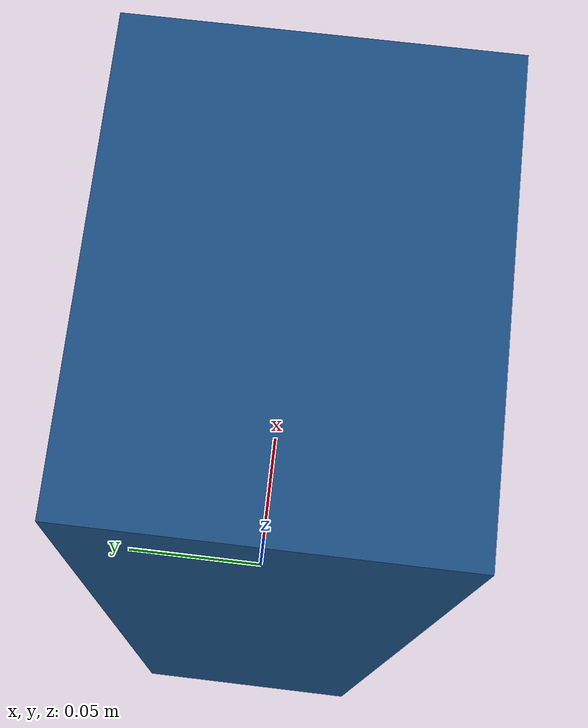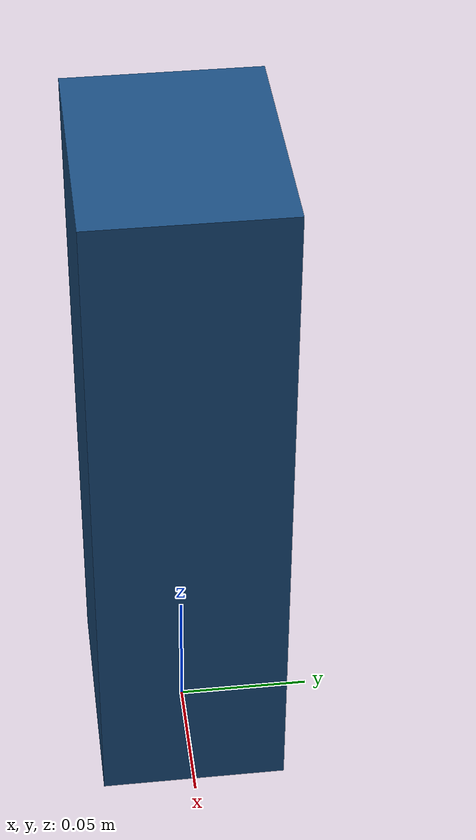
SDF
<sdf version="1.6">
    <model name="box3">
        <allow_auto_disable>true</allow_auto_disable>
        <link name="link_1">
            <kinematic>true</kinematic>
            <pose>0 0 0.13 0 0 0 0</pose>
            <inertial>
                <pose>0 0 -0.08 0 0 0 0</pose>
                <inertia>
                    <ixx>0.04441666666666666</ixx>
                    <ixy>0</ixy>
                    <ixz>0</ixz>
                    <iyy>0.047083333333333324</iyy>
                    <iyz>0</iyz>
                    <izz>0.010833333333333334</izz>
                </inertia>
                <mass>10.0</mass>
            </inertial>
            <visual name="visual">
                <geometry>
                    <box>
                        <size>0.09 0.07 0.26</size>
                    </box>
                </geometry>
                <material>
                    <ambient>0.1 0.3 0.5 1.0</ambient>
                    <diffuse>0.1 0.3 0.5 1.0</diffuse>
                </material>
            </visual>
            <collision name="box_collision">
                <geometry>
                    <box>
                        <size>0.09 0.07 0.26</size>
                    </box>
                </geometry>
                <surface>
                    <friction>
                        <ode>
                            <mu>1.0</mu>
                            <mu2>1.0</mu2>
                        </ode>
                    </friction>
                    <contact>
                        <ode>
                            <kp>1e15</kp>
                            <kd>1e12</kd>
                        </ode>
                    </contact>
                </surface>
            </collision>
        </link>
    </model>
</sdf>
